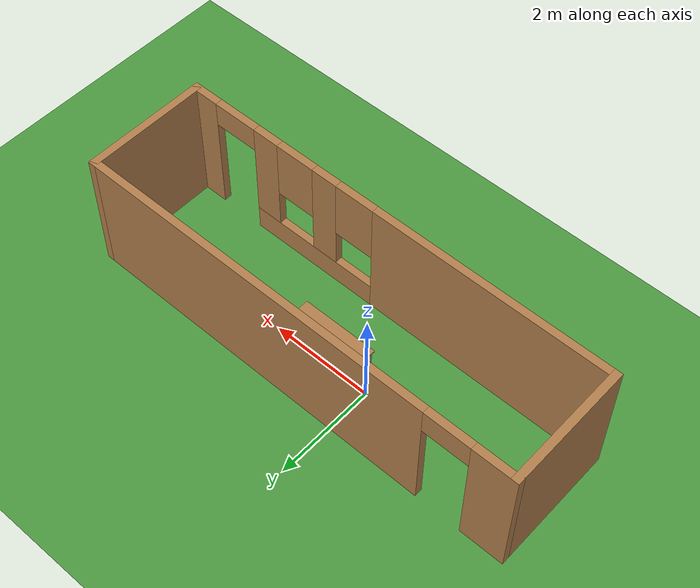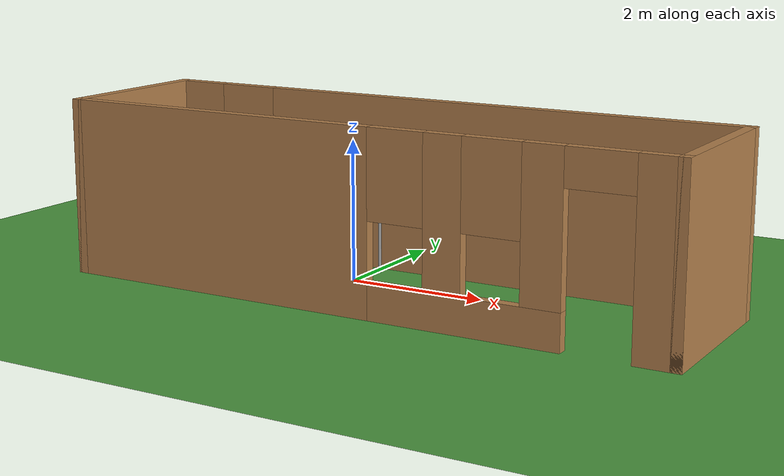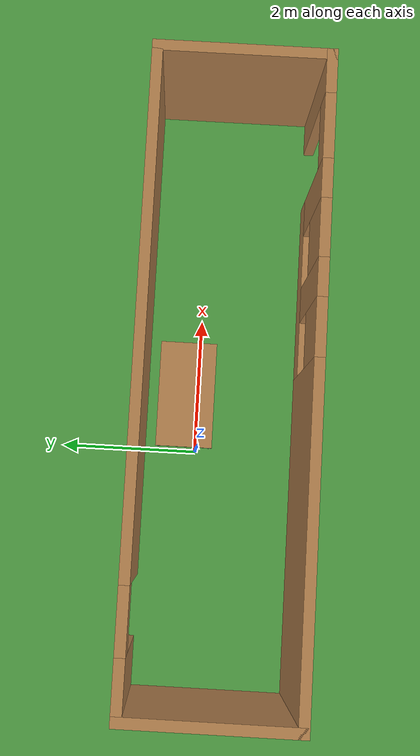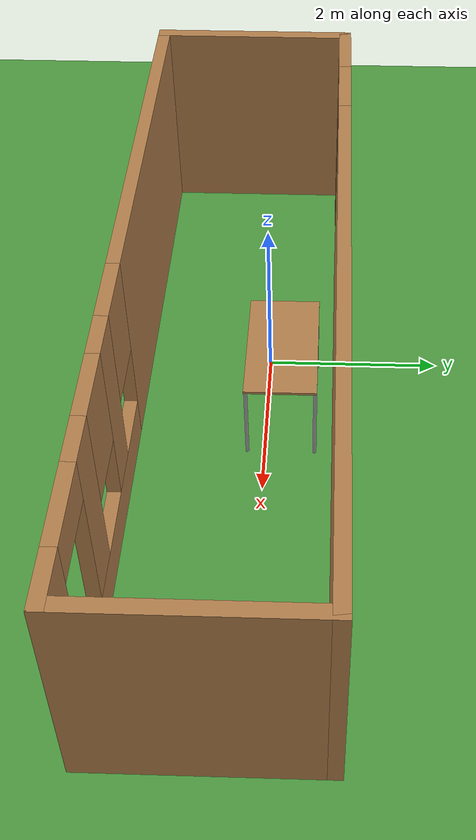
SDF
<sdf version="1.6">
 <world name="default">
  <light name="sun" type="directional">
   <pose>0 0 10 0 -0 0</pose>
   <diffuse>0.8 0.8 0.8 1</diffuse>
   <specular>0.2 0.2 0.2 1</specular>
   <attenuation>
    <range>1000</range>
    <constant>0.9</constant>
    <linear>0.01</linear>
    <quadratic>0.001</quadratic>
   </attenuation>
   <direction>-0.5 0.1 -0.9</direction>
  </light>
  <gravity>0 0 -9.8</gravity>
  <magnetic_field>6e-06 2.3e-05 -4.2e-05</magnetic_field>
  <atmosphere type="adiabatic"/>
  <physics name="default_physics" default="0" type="ode">
   <max_step_size>0.001</max_step_size>
   <real_time_factor>1</real_time_factor>
   <real_time_update_rate>1000</real_time_update_rate>
  </physics>
  <scene><ambient>0.4 0.4 0.4 1</ambient><background>0.7 0.7 0.7 1</background><shadows>1</shadows></scene>
  <spherical_coordinates>
   <surface_model>EARTH_WGS84</surface_model>
   <latitude_deg>0</latitude_deg>
   <longitude_deg>0</longitude_deg>
   <elevation>0</elevation>
   <heading_deg>0</heading_deg>
  </spherical_coordinates>
  <model name="sala">
   <pose>0.869759 -0.340399 0 0 -0 0</pose>
   <link name="Wall_0">
    <collision name="Wall_0_Collision">
     <geometry><box><size>2.5 0.15 2.5</size></box></geometry>
     <pose>0 0 1.25 0 -0 0</pose>
    </collision>
    <visual name="Wall_0_Visual">
     <pose>0 0 1.25 0 -0 0</pose>
     <geometry><box><size>2.5 0.15 2.5</size></box></geometry>
     <material>
      <script><uri>file://media/materials/scripts/gazebo.material</uri><name>Gazebo/Wood</name></script>
      <ambient>1 1 1 1</ambient>
     </material>
     <meta><layer>0</layer></meta>
    </visual>
    <pose>-4.425 -0 0 0 -0 -1.5708</pose>
   </link>
   <link name="Wall_1">
    <pose>-0 -1.175 0 0 -0 0</pose>
    <visual name="Wall_1_Visual_0">
     <pose>-2.0925 0 1.25 0 -0 0</pose>
     <geometry><box><size>4.815 0.15 2.5</size></box></geometry>
     <material>
      <script><uri>file://media/materials/scripts/gazebo.material</uri><name>Gazebo/Wood</name></script>
      <ambient>1 1 1 1</ambient>
     </material>
     <meta><layer>0</layer></meta>
    </visual>
    <collision name="Wall_1_Collision_0">
     <geometry><box><size>4.815 0.15 2.5</size></box></geometry>
     <pose>-2.0925 0 1.25 0 -0 0</pose>
    </collision>
    <visual name="Wall_1_Visual_1">
     <pose>4.1925 0 1.25 0 -0 0</pose>
     <geometry><box><size>0.615 0.15 2.5</size></box></geometry>
     <material>
      <script><uri>file://media/materials/scripts/gazebo.material</uri><name>Gazebo/Wood</name></script>
      <ambient>1 1 1 1</ambient>
     </material>
     <meta><layer>0</layer></meta>
    </visual>
    <collision name="Wall_1_Collision_1">
     <geometry><box><size>0.615 0.15 2.5</size></box></geometry>
     <pose>4.1925 0 1.25 0 -0 0</pose>
    </collision>
    <visual name="Wall_1_Visual_2">
     <pose>1.65 0 0.25 0 -0 0</pose>
     <geometry><box><size>2.67 0.15 0.5</size></box></geometry>
     <material>
      <script><uri>file://media/materials/scripts/gazebo.material</uri><name>Gazebo/Wood</name></script>
      <ambient>1 1 1 1</ambient>
     </material>
     <meta><layer>0</layer></meta>
    </visual>
    <collision name="Wall_1_Collision_2">
     <geometry><box><size>2.67 0.15 0.5</size></box></geometry>
     <pose>1.65 0 0.25 0 -0 0</pose>
    </collision>
    <visual name="Wall_1_Visual_3">
     <pose>1.38 0 1.5 0 -0 0</pose>
     <geometry><box><size>0.53 0.15 2</size></box></geometry>
     <material>
      <script><uri>file://media/materials/scripts/gazebo.material</uri><name>Gazebo/Wood</name></script>
      <ambient>1 1 1 1</ambient>
     </material>
     <meta><layer>0</layer></meta>
    </visual>
    <collision name="Wall_1_Collision_3">
     <geometry><box><size>0.53 0.15 2</size></box></geometry>
     <pose>1.38 0 1.5 0 -0 0</pose>
    </collision>
    <visual name="Wall_1_Visual_4">
     <pose>2.715 0 1.5 0 -0 0</pose>
     <geometry><box><size>0.54 0.15 2</size></box></geometry>
     <material>
      <script><uri>file://media/materials/scripts/gazebo.material</uri><name>Gazebo/Wood</name></script>
      <ambient>1 1 1 1</ambient>
     </material>
     <meta><layer>0</layer></meta>
    </visual>
    <collision name="Wall_1_Collision_4">
     <geometry><box><size>0.54 0.15 2</size></box></geometry>
     <pose>2.715 0 1.5 0 -0 0</pose>
    </collision>
    <visual name="Wall_1_Visual_5">
     <pose>0.715 0 1.9 0 -0 0</pose>
     <geometry><box><size>0.8 0.15 1.2</size></box></geometry>
     <material>
      <script><uri>file://media/materials/scripts/gazebo.material</uri><name>Gazebo/Wood</name></script>
      <ambient>1 1 1 1</ambient>
     </material>
     <meta><layer>0</layer></meta>
    </visual>
    <collision name="Wall_1_Collision_5">
     <geometry><box><size>0.8 0.15 1.2</size></box></geometry>
     <pose>0.715 0 1.9 0 -0 0</pose>
    </collision>
    <visual name="Wall_1_Visual_6">
     <pose>2.045 0 1.9 0 -0 0</pose>
     <geometry><box><size>0.8 0.15 1.2</size></box></geometry>
     <material>
      <script><uri>file://media/materials/scripts/gazebo.material</uri><name>Gazebo/Wood</name></script>
      <ambient>1 1 1 1</ambient>
     </material>
     <meta><layer>0</layer></meta>
    </visual>
    <collision name="Wall_1_Collision_6">
     <geometry><box><size>0.8 0.15 1.2</size></box></geometry>
     <pose>2.045 0 1.9 0 -0 0</pose>
    </collision>
    <visual name="Wall_1_Visual_7">
     <pose>3.435 0 2.25 0 -0 0</pose>
     <geometry><box><size>0.9 0.15 0.5</size></box></geometry>
     <material>
      <script><uri>file://media/materials/scripts/gazebo.material</uri><name>Gazebo/Wood</name></script>
      <ambient>1 1 1 1</ambient>
     </material>
     <meta><layer>0</layer></meta>
    </visual>
    <collision name="Wall_1_Collision_7">
     <geometry><box><size>0.9 0.15 0.5</size></box></geometry>
     <pose>3.435 0 2.25 0 -0 0</pose>
    </collision>
   </link>
   <link name="Wall_2">
    <collision name="Wall_2_Collision">
     <geometry><box><size>2.5 0.15 2.5</size></box></geometry>
     <pose>0 0 1.25 0 -0 0</pose>
    </collision>
    <visual name="Wall_2_Visual">
     <pose>0 0 1.25 0 -0 0</pose>
     <geometry><box><size>2.5 0.15 2.5</size></box></geometry>
     <material>
      <script><uri>file://media/materials/scripts/gazebo.material</uri><name>Gazebo/Wood</name></script>
      <ambient>1 1 1 1</ambient>
     </material>
     <meta><layer>0</layer></meta>
    </visual>
    <pose>4.425 -0 0 0 -0 1.5708</pose>
   </link>
   <link name="Wall_3">
    <pose>-0 1.175 0 0 -0 3.14159</pose>
    <visual name="Wall_3_Visual_0">
     <pose>-0.8825 0 1.25 0 -0 0</pose>
     <geometry><box><size>7.235 0.15 2.5</size></box></geometry>
     <material>
      <script><uri>file://media/materials/scripts/gazebo.material</uri><name>Gazebo/Wood</name></script>
      <ambient>1 1 1 1</ambient>
     </material>
     <meta><layer>0</layer></meta>
    </visual>
    <collision name="Wall_3_Collision_0">
     <geometry><box><size>7.235 0.15 2.5</size></box></geometry>
     <pose>-0.8825 0 1.25 0 -0 0</pose>
    </collision>
    <visual name="Wall_3_Visual_1">
     <pose>4.0675 0 1.25 0 -0 0</pose>
     <geometry><box><size>0.865 0.15 2.5</size></box></geometry>
     <material>
      <script><uri>file://media/materials/scripts/gazebo.material</uri><name>Gazebo/Wood</name></script>
      <ambient>1 1 1 1</ambient>
     </material>
     <meta><layer>0</layer></meta>
    </visual>
    <collision name="Wall_3_Collision_1">
     <geometry><box><size>0.865 0.15 2.5</size></box></geometry>
     <pose>4.0675 0 1.25 0 -0 0</pose>
    </collision>
    <visual name="Wall_3_Visual_2">
     <pose>3.185 0 2.25 0 -0 0</pose>
     <geometry><box><size>0.9 0.15 0.5</size></box></geometry>
     <material>
      <script><uri>file://media/materials/scripts/gazebo.material</uri><name>Gazebo/Wood</name></script>
      <ambient>1 1 1 1</ambient>
     </material>
     <meta><layer>0</layer></meta>
    </visual>
    <collision name="Wall_3_Collision_2">
     <geometry><box><size>0.9 0.15 0.5</size></box></geometry>
     <pose>3.185 0 2.25 0 -0 0</pose>
    </collision>
   </link>
   <static>1</static>
  </model>
  <model name="grass_plane">
   <static>1</static>
   <link name="grass">
    <collision name="collision">
     <geometry><plane><normal>0 0 1</normal><size>500 500</size></plane></geometry>
     <surface><friction><ode><mu>0.5</mu><mu2>0.5</mu2></ode></friction></surface>
    </collision>
    <visual name="visual_0">
     <cast_shadows>0</cast_shadows>
     <geometry><plane><normal>0 0 1</normal><size>500 500</size></plane></geometry>
     <material>
      <script>
       <uri>model://vrc_driving_terrain/materials/scripts</uri>
       <uri>model://vrc_driving_terrain/materials/textures</uri>
       <name>vrc/grass</name>
      </script>
     </material>
    </visual>
   </link>
   <pose>-0.561788 -0.435231 0 0 -0 0</pose>
  </model>
  <model name="table">
   <static>1</static>
   <link name="link">
    <collision name="surface">
     <pose>0 0 1 0 -0 0</pose>
     <geometry><box><size>1.5 0.8 0.03</size></box></geometry>
     <surface><friction><ode><mu>0.6</mu><mu2>0.6</mu2></ode></friction></surface>
    </collision>
    <visual name="visual1">
     <pose>0 0 1 0 -0 0</pose>
     <geometry><box><size>1.5 0.8 0.03</size></box></geometry>
     <material>
      <script><uri>file://media/materials/scripts/gazebo.material</uri><name>Gazebo/Wood</name></script>
     </material>
    </visual>
    <collision name="front_left_leg">
     <pose>0.68 0.38 0.5 0 -0 0</pose>
     <geometry><cylinder><radius>0.02</radius><length>1</length></cylinder></geometry>
    </collision>
    <visual name="front_left_leg">
     <pose>0.68 0.38 0.5 0 -0 0</pose>
     <geometry><cylinder><radius>0.02</radius><length>1</length></cylinder></geometry>
     <material>
      <script><uri>file://media/materials/scripts/gazebo.material</uri><name>Gazebo/Grey</name></script>
     </material>
    </visual>
    <collision name="front_right_leg">
     <pose>0.68 -0.38 0.5 0 -0 0</pose>
     <geometry><cylinder><radius>0.02</radius><length>1</length></cylinder></geometry>
    </collision>
    <visual name="front_right_leg">
     <pose>0.68 -0.38 0.5 0 -0 0</pose>
     <geometry><cylinder><radius>0.02</radius><length>1</length></cylinder></geometry>
     <material>
      <script><uri>file://media/materials/scripts/gazebo.material</uri><name>Gazebo/Grey</name></script>
     </material>
    </visual>
    <collision name="back_right_leg">
     <pose>-0.68 -0.38 0.5 0 -0 0</pose>
     <geometry><cylinder><radius>0.02</radius><length>1</length></cylinder></geometry>
    </collision>
    <visual name="back_right_leg">
     <pose>-0.68 -0.38 0.5 0 -0 0</pose>
     <geometry><cylinder><radius>0.02</radius><length>1</length></cylinder></geometry>
     <material>
      <script><uri>file://media/materials/scripts/gazebo.material</uri><name>Gazebo/Grey</name></script>
     </material>
    </visual>
    <collision name="back_left_leg">
     <pose>-0.68 0.38 0.5 0 -0 0</pose>
     <geometry><cylinder><radius>0.02</radius><length>1</length></cylinder></geometry>
    </collision>
    <visual name="back_left_leg">
     <pose>-0.68 0.38 0.5 0 -0 0</pose>
     <geometry><cylinder><radius>0.02</radius><length>1</length></cylinder></geometry>
     <material>
      <script><uri>file://media/materials/scripts/gazebo.material</uri><name>Gazebo/Grey</name></script>
     </material>
    </visual>
   </link>
   <pose>0.764988 0.183407 0 0 -0 0</pose>
  </model>
 </world>
</sdf>
